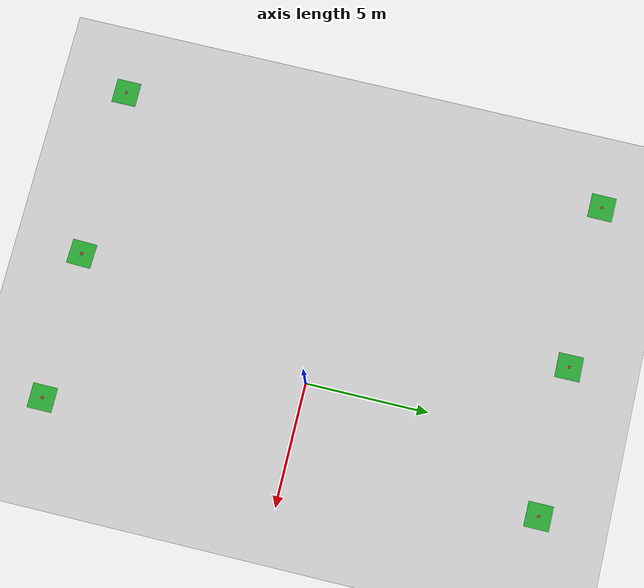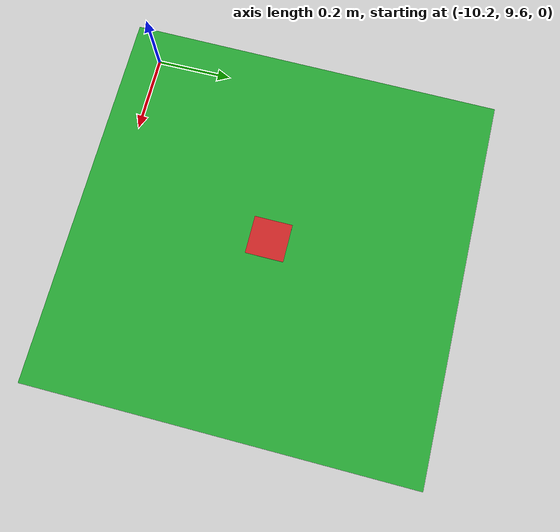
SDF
<sdf version="1.7">
 <world name="default">
  <physics type="ode">
   <ode>
    <solver>
     <type>quick</type>
     <iters>100</iters>
     <sor>1</sor>
     <use_dynamic_moi_rescaling>0</use_dynamic_moi_rescaling>
    </solver>
    <constraints>
     <cfm>0</cfm>
     <erp>0.9</erp>
     <contact_max_correcting_vel>0.1</contact_max_correcting_vel>
     <contact_surface_layer>0</contact_surface_layer>
    </constraints>
   </ode>
   <real_time_update_rate>-1</real_time_update_rate>
   <max_step_size>0.001</max_step_size>
   <real_time_factor>1</real_time_factor>
  </physics>
  <light name="sun" type="directional">
   <pose>0 0 10 0 -0 0</pose>
   <diffuse>0.8 0.8 0.8 1</diffuse>
   <specular>0.2 0.2 0.2 1</specular>
   <attenuation>
    <range>1000</range>
    <constant>0.9</constant>
    <linear>0.01</linear>
    <quadratic>0.001</quadratic>
   </attenuation>
   <direction>-0.5 0.1 -0.9</direction>
   <spot><inner_angle>0</inner_angle><outer_angle>0</outer_angle><falloff>0</falloff></spot>
  </light>
  <model name="ground_plane">
   <static>1</static>
   <link name="link">
    <collision name="collision">
     <geometry><plane><normal>0 0 1</normal><size>100 100</size></plane></geometry>
     <surface>
      <contact><collide_bitmask>65535</collide_bitmask></contact>
      <friction><ode><mu>100</mu><mu2>50</mu2></ode></friction>
     </surface>
    </collision>
    <visual name="visual">
     <cast_shadows>0</cast_shadows>
     <geometry><plane><normal>0 0 1</normal><size>100 100</size></plane></geometry>
     <material>
      <script><uri>file://media/materials/scripts/gazebo.material</uri><name>Gazebo/Grey</name></script>
     </material>
    </visual>
   </link>
  </model>
  <model name="irlock_beacon_01">
   <pose>-2.99655 -10.0294 0.008496 0 -0.002992 -0.033361</pose>
   <link name="link">
    <inertial>
     <mass>3</mass>
     <inertia><ixx>0.019</ixx><ixy>0</ixy><ixz>0</ixz><iyy>0.01</iyy><iyz>0</iyz><izz>0.01</izz></inertia>
    </inertial>
    <collision name="collision">
     <geometry><box><size>1 1 0.02</size></box></geometry>
     <surface>
      <friction><ode><mu>1</mu><mu2>1</mu2><fdir1>1 0 0</fdir1></ode></friction>
      <contact><ode><kp>1e+12</kp><kd>1</kd><max_vel>10</max_vel><min_depth>0.003</min_depth></ode></contact>
     </surface>
    </collision>
    <visual name="visual2">
     <geometry><box><size>1 1 0.018</size></box></geometry>
     <material><script><name>Gazebo/Green</name><uri>__default__</uri></script></material>
    </visual>
    <visual name="visual">
     <geometry><box><size>0.1 0.1 0.02</size></box></geometry>
     <material><script><name>Gazebo/Red</name><uri>__default__</uri></script></material>
    </visual>
   </link>
  </model>
  <gravity>0 0 -9.8</gravity>
  <magnetic_field>6e-06 2.3e-05 -4.2e-05</magnetic_field>
  <atmosphere type="adiabatic"/>
  <scene><ambient>0.4 0.4 0.4 1</ambient><background>0.7 0.7 0.7 1</background><shadows>1</shadows></scene>
  <spherical_coordinates>
   <surface_model>EARTH_WGS84</surface_model>
   <latitude_deg>0</latitude_deg>
   <longitude_deg>0</longitude_deg>
   <elevation>0</elevation>
   <heading_deg>0</heading_deg>
  </spherical_coordinates>
  <model name="irlock_beacon_01_clone_clone">
   <pose>2.92241 10.0605 0.008499 2e-06 0.002998 0.000103</pose>
   <link name="link">
    <inertial>
     <mass>3</mass>
     <inertia><ixx>0.019</ixx><ixy>0</ixy><ixz>0</ixz><iyy>0.01</iyy><iyz>0</iyz><izz>0.01</izz></inertia>
    </inertial>
    <collision name="collision">
     <geometry><box><size>1 1 0.02</size></box></geometry>
     <surface>
      <friction><ode><mu>1</mu><mu2>1</mu2><fdir1>1 0 0</fdir1></ode></friction>
      <contact><ode><kp>1e+12</kp><kd>1</kd><max_vel>10</max_vel><min_depth>0.003</min_depth></ode></contact>
     </surface>
    </collision>
    <visual name="visual2">
     <geometry><box><size>1 1 0.018</size></box></geometry>
     <material><script><name>Gazebo/Green</name><uri>__default__</uri></script></material>
    </visual>
    <visual name="visual">
     <geometry><box><size>0.1 0.1 0.02</size></box></geometry>
     <material><script><name>Gazebo/Red</name><uri>__default__</uri></script></material>
    </visual>
   </link>
  </model>
  <model name="irlock_beacon_01_clone_clone_0">
   <pose>-3.08345 10.0396 0.008493 -0 0.002988 0.008272</pose>
   <link name="link">
    <inertial>
     <mass>3</mass>
     <inertia><ixx>0.019</ixx><ixy>0</ixy><ixz>0</ixz><iyy>0.01</iyy><iyz>0</iyz><izz>0.01</izz></inertia>
    </inertial>
    <collision name="collision">
     <geometry><box><size>1 1 0.02</size></box></geometry>
     <surface>
      <friction><ode><mu>1</mu><mu2>1</mu2><fdir1>1 0 0</fdir1></ode></friction>
      <contact><ode><kp>1e+12</kp><kd>1</kd><max_vel>10</max_vel><min_depth>0.003</min_depth></ode></contact>
     </surface>
    </collision>
    <visual name="visual2">
     <geometry><box><size>1 1 0.018</size></box></geometry>
     <material><script><name>Gazebo/Green</name><uri>__default__</uri></script></material>
    </visual>
    <visual name="visual">
     <geometry><box><size>0.1 0.1 0.02</size></box></geometry>
     <material><script><name>Gazebo/Red</name><uri>__default__</uri></script></material>
    </visual>
   </link>
  </model>
  <model name="irlock_beacon_01_clone_0">
   <pose>-9.77817 10.0162 0.008492 -1e-06 -0.002985 -0.009823</pose>
   <link name="link">
    <inertial>
     <mass>3</mass>
     <inertia><ixx>0.019</ixx><ixy>0</ixy><ixz>0</ixz><iyy>0.01</iyy><iyz>0</iyz><izz>0.01</izz></inertia>
    </inertial>
    <collision name="collision">
     <geometry><box><size>1 1 0.02</size></box></geometry>
     <surface>
      <friction><ode><mu>1</mu><mu2>1</mu2><fdir1>1 0 0</fdir1></ode></friction>
      <contact><ode><kp>1e+12</kp><kd>1</kd><max_vel>10</max_vel><min_depth>0.003</min_depth></ode></contact>
     </surface>
    </collision>
    <visual name="visual2">
     <geometry><box><size>1 1 0.018</size></box></geometry>
     <material><script><name>Gazebo/Green</name><uri>__default__</uri></script></material>
    </visual>
    <visual name="visual">
     <geometry><box><size>0.1 0.1 0.02</size></box></geometry>
     <material><script><name>Gazebo/Red</name><uri>__default__</uri></script></material>
    </visual>
   </link>
  </model>
  <model name="irlock_beacon_01_clone_1">
   <pose>-9.97208 -10.0375 0.008491 -0 0.002983 -0.001032</pose>
   <link name="link">
    <inertial>
     <mass>3</mass>
     <inertia><ixx>0.019</ixx><ixy>0</ixy><ixz>0</ixz><iyy>0.01</iyy><iyz>0</iyz><izz>0.01</izz></inertia>
    </inertial>
    <collision name="collision">
     <geometry><box><size>1 1 0.02</size></box></geometry>
     <surface>
      <friction><ode><mu>1</mu><mu2>1</mu2><fdir1>1 0 0</fdir1></ode></friction>
      <contact><ode><kp>1e+12</kp><kd>1</kd><max_vel>10</max_vel><min_depth>0.003</min_depth></ode></contact>
     </surface>
    </collision>
    <visual name="visual2">
     <geometry><box><size>1 1 0.018</size></box></geometry>
     <material><script><name>Gazebo/Green</name><uri>__default__</uri></script></material>
    </visual>
    <visual name="visual">
     <geometry><box><size>0.1 0.1 0.02</size></box></geometry>
     <material><script><name>Gazebo/Red</name><uri>__default__</uri></script></material>
    </visual>
   </link>
  </model>
  <model name="irlock_beacon_01_clone_2">
   <pose>2.97923 -9.99977 0.008498 -0 0.002996 -0.001255</pose>
   <link name="link">
    <inertial>
     <mass>3</mass>
     <inertia><ixx>0.019</ixx><ixy>0</ixy><ixz>0</ixz><iyy>0.01</iyy><iyz>0</iyz><izz>0.01</izz></inertia>
    </inertial>
    <collision name="collision">
     <geometry><box><size>1 1 0.02</size></box></geometry>
     <surface>
      <friction><ode><mu>1</mu><mu2>1</mu2><fdir1>1 0 0</fdir1></ode></friction>
      <contact><ode><kp>1e+12</kp><kd>1</kd><max_vel>10</max_vel><min_depth>0.003</min_depth></ode></contact>
     </surface>
    </collision>
    <visual name="visual2">
     <geometry><box><size>1 1 0.018</size></box></geometry>
     <material><script><name>Gazebo/Green</name><uri>__default__</uri></script></material>
    </visual>
    <visual name="visual">
     <geometry><box><size>0.1 0.1 0.02</size></box></geometry>
     <material><script><name>Gazebo/Red</name><uri>__default__</uri></script></material>
    </visual>
   </link>
  </model>
 </world>
</sdf>
